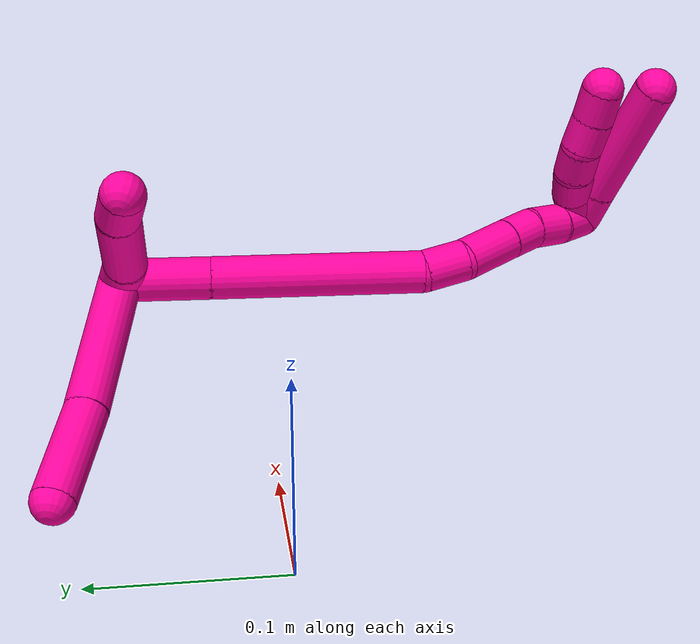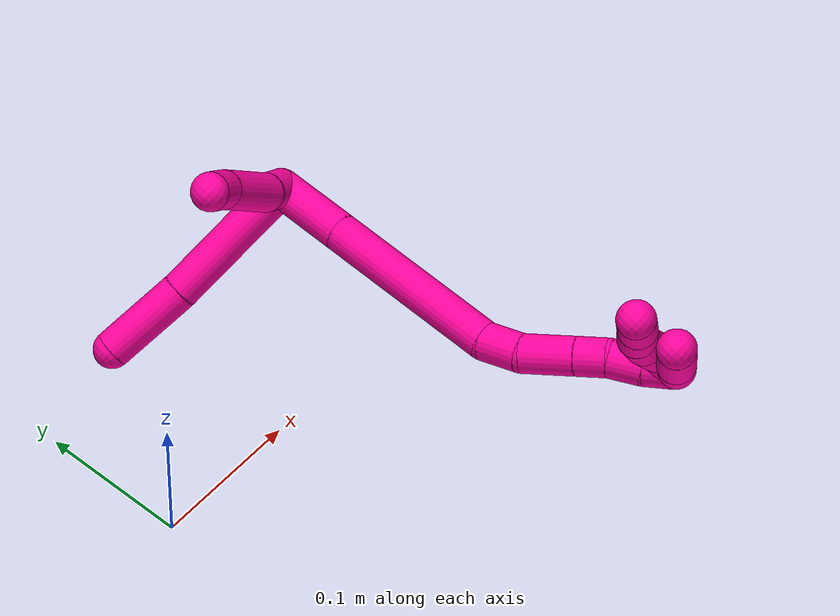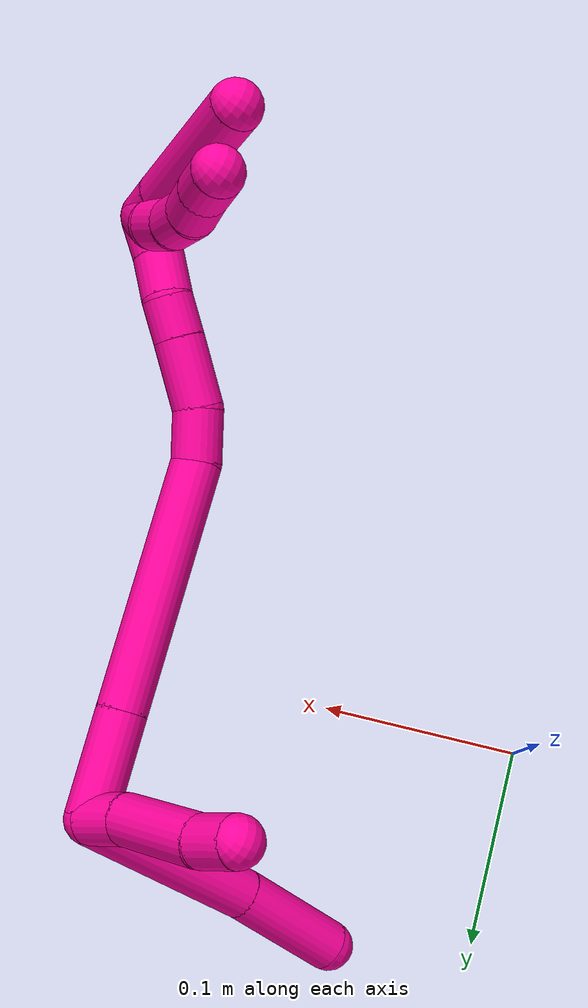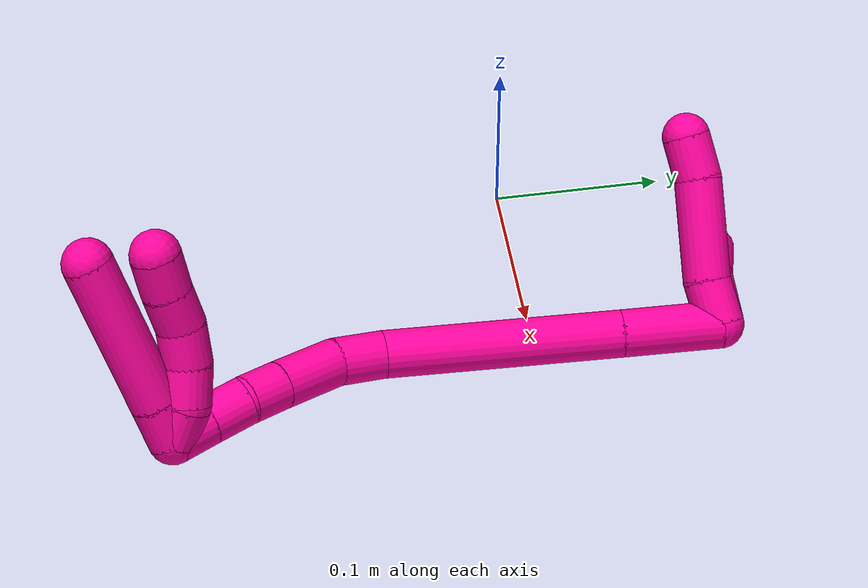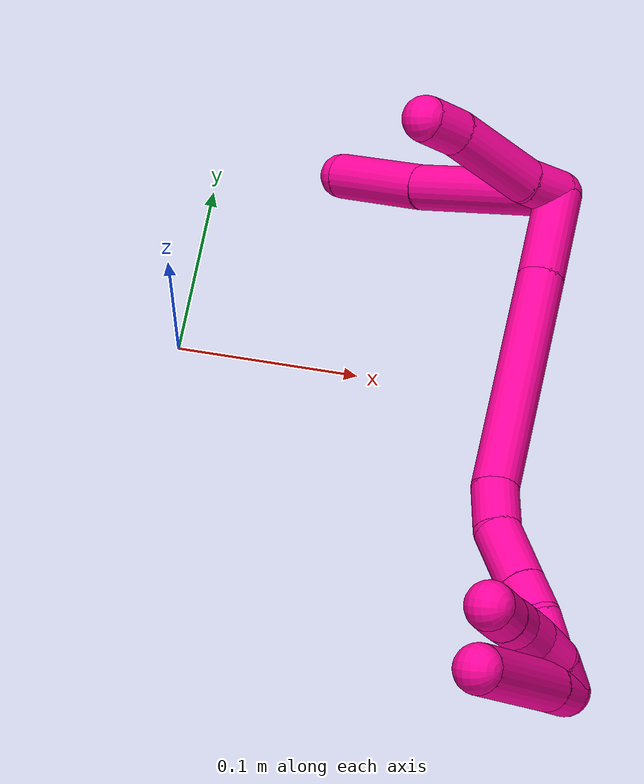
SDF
<sdf version="1.7">
 <world name="default">
  <model name="18">
   <static>0</static>
   <link name="18">
    <collision name="collision-cylinder-e_1_2_8">
     <pose>-0.000948 0.000489 -0.046113 -3.13099 -0.020552 2.18879</pose>
     <geometry><cylinder><radius>0.0125</radius><length>0.092251</length></cylinder></geometry>
     <surface>
      <friction><ode><mu>1.16</mu><mu2>1.16</mu2><slip1>0</slip1><slip2>0</slip2></ode></friction>
      <contact><ode><kp>1e+06</kp><kd>1</kd><max_vel>0</max_vel><min_depth>0.001</min_depth></ode></contact>
     </surface>
    </collision>
    <visual name="visual-cylinder-e_1_2_8">
     <pose>-0.000948 0.000489 -0.046113 -3.13099 -0.020552 2.18879</pose>
     <geometry><cylinder><radius>0.0125</radius><length>0.092251</length></cylinder></geometry>
     <material><ambient>1 0.007843 0.615686 1</ambient></material>
    </visual>
    <collision name="collision-cylinder-e_2_8_6">
     <pose>-0.00257 0.003519 -0.120981 -3.05345 -0.02335 0.51762</pose>
     <geometry><cylinder><radius>0.0125</radius><length>0.057749</length></cylinder></geometry>
     <surface>
      <friction><ode><mu>1.16</mu><mu2>1.16</mu2><slip1>0</slip1><slip2>0</slip2></ode></friction>
      <contact><ode><kp>1e+06</kp><kd>1</kd><max_vel>0</max_vel><min_depth>0.001</min_depth></ode></contact>
     </surface>
    </collision>
    <visual name="visual-cylinder-e_2_8_6">
     <pose>-0.00257 0.003519 -0.120981 -3.05345 -0.02335 0.51762</pose>
     <geometry><cylinder><radius>0.0125</radius><length>0.057749</length></cylinder></geometry>
     <material><ambient>1 0.007843 0.615686 1</ambient></material>
    </visual>
    <collision name="collision-cylinder-e_1_2_9">
     <pose>-0.011604 -0.001072 -0.002847 2.78165 -1.31439 -2.67848</pose>
     <geometry><cylinder><radius>0.0125</radius><length>0.023993</length></cylinder></geometry>
     <surface>
      <friction><ode><mu>1.16</mu><mu2>1.16</mu2><slip1>0</slip1><slip2>0</slip2></ode></friction>
      <contact><ode><kp>1e+06</kp><kd>1</kd><max_vel>0</max_vel><min_depth>0.001</min_depth></ode></contact>
     </surface>
    </collision>
    <visual name="visual-cylinder-e_1_2_9">
     <pose>-0.011604 -0.001072 -0.002847 2.78165 -1.31439 -2.67848</pose>
     <geometry><cylinder><radius>0.0125</radius><length>0.023993</length></cylinder></geometry>
     <material><ambient>1 0.007843 0.615686 1</ambient></material>
    </visual>
    <collision name="collision-cylinder-e_2_9_10">
     <pose>-0.049018 0.000912 -0.011091 -2.62645 -1.33499 2.49651</pose>
     <geometry><cylinder><radius>0.0125</radius><length>0.053087</length></cylinder></geometry>
     <surface>
      <friction><ode><mu>1.16</mu><mu2>1.16</mu2><slip1>0</slip1><slip2>0</slip2></ode></friction>
      <contact><ode><kp>1e+06</kp><kd>1</kd><max_vel>0</max_vel><min_depth>0.001</min_depth></ode></contact>
     </surface>
    </collision>
    <visual name="visual-cylinder-e_2_9_10">
     <pose>-0.049018 0.000912 -0.011091 -2.62645 -1.33499 2.49651</pose>
     <geometry><cylinder><radius>0.0125</radius><length>0.053087</length></cylinder></geometry>
     <material><ambient>1 0.007843 0.615686 1</ambient></material>
    </visual>
    <collision name="collision-cylinder-e_3_10_5">
     <pose>-0.086102 0.003178 -0.018376 2.7459 -1.39126 -2.67026</pose>
     <geometry><cylinder><radius>0.0125</radius><length>0.02292</length></cylinder></geometry>
     <surface>
      <friction><ode><mu>1.16</mu><mu2>1.16</mu2><slip1>0</slip1><slip2>0</slip2></ode></friction>
      <contact><ode><kp>1e+06</kp><kd>1</kd><max_vel>0</max_vel><min_depth>0.001</min_depth></ode></contact>
     </surface>
    </collision>
    <visual name="visual-cylinder-e_3_10_5">
     <pose>-0.086102 0.003178 -0.018376 2.7459 -1.39126 -2.67026</pose>
     <geometry><cylinder><radius>0.0125</radius><length>0.02292</length></cylinder></geometry>
     <material><ambient>1 0.007843 0.615686 1</ambient></material>
    </visual>
    <collision name="collision-cylinder-e_1_2_11">
     <pose>-0.004025 -0.025428 0.004235 1.40576 -0.154881 -0.131293</pose>
     <geometry><cylinder><radius>0.0125</radius><length>0.052182</length></cylinder></geometry>
     <surface>
      <friction><ode><mu>1.16</mu><mu2>1.16</mu2><slip1>0</slip1><slip2>0</slip2></ode></friction>
      <contact><ode><kp>1e+06</kp><kd>1</kd><max_vel>0</max_vel><min_depth>0.001</min_depth></ode></contact>
     </surface>
    </collision>
    <visual name="visual-cylinder-e_1_2_11">
     <pose>-0.004025 -0.025428 0.004235 1.40576 -0.154881 -0.131293</pose>
     <geometry><cylinder><radius>0.0125</radius><length>0.052182</length></cylinder></geometry>
     <material><ambient>1 0.007843 0.615686 1</ambient></material>
    </visual>
    <collision name="collision-cylinder-e_2_11_12">
     <pose>-0.01792 -0.111348 0.018486 1.40672 -0.159615 -0.135442</pose>
     <geometry><cylinder><radius>0.0125</radius><length>0.124209</length></cylinder></geometry>
     <surface>
      <friction><ode><mu>1.16</mu><mu2>1.16</mu2><slip1>0</slip1><slip2>0</slip2></ode></friction>
      <contact><ode><kp>1e+06</kp><kd>1</kd><max_vel>0</max_vel><min_depth>0.001</min_depth></ode></contact>
     </surface>
    </collision>
    <visual name="visual-cylinder-e_2_11_12">
     <pose>-0.01792 -0.111348 0.018486 1.40672 -0.159615 -0.135442</pose>
     <geometry><cylinder><radius>0.0125</radius><length>0.124209</length></cylinder></geometry>
     <material><ambient>1 0.007843 0.615686 1</ambient></material>
    </visual>
    <collision name="collision-cylinder-e_3_12_13">
     <pose>-0.029874 -0.183382 0.034242 1.10925 -0.160194 -0.099368</pose>
     <geometry><cylinder><radius>0.0125</radius><length>0.026117</length></cylinder></geometry>
     <surface>
      <friction><ode><mu>1.16</mu><mu2>1.16</mu2><slip1>0</slip1><slip2>0</slip2></ode></friction>
      <contact><ode><kp>1e+06</kp><kd>1</kd><max_vel>0</max_vel><min_depth>0.001</min_depth></ode></contact>
     </surface>
    </collision>
    <visual name="visual-cylinder-e_3_12_13">
     <pose>-0.029874 -0.183382 0.034242 1.10925 -0.160194 -0.099368</pose>
     <geometry><cylinder><radius>0.0125</radius><length>0.026117</length></cylinder></geometry>
     <material><ambient>1 0.007843 0.615686 1</ambient></material>
    </visual>
    <collision name="collision-cylinder-e_4_13_14">
     <pose>-0.032034 -0.207993 0.05151 0.848007 -0.004387 -0.00198</pose>
     <geometry><cylinder><radius>0.0125</radius><length>0.034853</length></cylinder></geometry>
     <surface>
      <friction><ode><mu>1.16</mu><mu2>1.16</mu2><slip1>0</slip1><slip2>0</slip2></ode></friction>
      <contact><ode><kp>1e+06</kp><kd>1</kd><max_vel>0</max_vel><min_depth>0.001</min_depth></ode></contact>
     </surface>
    </collision>
    <visual name="visual-cylinder-e_4_13_14">
     <pose>-0.032034 -0.207993 0.05151 0.848007 -0.004387 -0.00198</pose>
     <geometry><cylinder><radius>0.0125</radius><length>0.034853</length></cylinder></geometry>
     <material><ambient>1 0.007843 0.615686 1</ambient></material>
    </visual>
    <collision name="collision-cylinder-e_5_14_15">
     <pose>-0.031926 -0.228726 0.069809 0.847056 0.018021 0.008124</pose>
     <geometry><cylinder><radius>0.0125</radius><length>0.020459</length></cylinder></geometry>
     <surface>
      <friction><ode><mu>1.16</mu><mu2>1.16</mu2><slip1>0</slip1><slip2>0</slip2></ode></friction>
      <contact><ode><kp>1e+06</kp><kd>1</kd><max_vel>0</max_vel><min_depth>0.001</min_depth></ode></contact>
     </surface>
    </collision>
    <visual name="visual-cylinder-e_5_14_15">
     <pose>-0.031926 -0.228726 0.069809 0.847056 0.018021 0.008124</pose>
     <geometry><cylinder><radius>0.0125</radius><length>0.020459</length></cylinder></geometry>
     <material><ambient>1 0.007843 0.615686 1</ambient></material>
    </visual>
    <collision name="collision-cylinder-e_6_15_16">
     <pose>-0.030148 -0.24572 0.082212 1.02787 0.145152 0.082041</pose>
     <geometry><cylinder><radius>0.0125</radius><length>0.022026</length></cylinder></geometry>
     <surface>
      <friction><ode><mu>1.16</mu><mu2>1.16</mu2><slip1>0</slip1><slip2>0</slip2></ode></friction>
      <contact><ode><kp>1e+06</kp><kd>1</kd><max_vel>0</max_vel><min_depth>0.001</min_depth></ode></contact>
     </surface>
    </collision>
    <visual name="visual-cylinder-e_6_15_16">
     <pose>-0.030148 -0.24572 0.082212 1.02787 0.145152 0.082041</pose>
     <geometry><cylinder><radius>0.0125</radius><length>0.022026</length></cylinder></geometry>
     <material><ambient>1 0.007843 0.615686 1</ambient></material>
    </visual>
    <collision name="collision-cylinder-e_7_16_1">
     <pose>-0.02746 -0.262777 0.094218 0.88088 0.108942 0.051386</pose>
     <geometry><cylinder><radius>0.0125</radius><length>0.020156</length></cylinder></geometry>
     <surface>
      <friction><ode><mu>1.16</mu><mu2>1.16</mu2><slip1>0</slip1><slip2>0</slip2></ode></friction>
      <contact><ode><kp>1e+06</kp><kd>1</kd><max_vel>0</max_vel><min_depth>0.001</min_depth></ode></contact>
     </surface>
    </collision>
    <visual name="visual-cylinder-e_7_16_1">
     <pose>-0.02746 -0.262777 0.094218 0.88088 0.108942 0.051386</pose>
     <geometry><cylinder><radius>0.0125</radius><length>0.020156</length></cylinder></geometry>
     <material><ambient>1 0.007843 0.615686 1</ambient></material>
    </visual>
    <collision name="collision-cylinder-e_1_1_17">
     <pose>-0.03706 -0.271763 0.102825 0.513954 -1.33571 -0.40877</pose>
     <geometry><cylinder><radius>0.0125</radius><length>0.021996</length></cylinder></geometry>
     <surface>
      <friction><ode><mu>1.16</mu><mu2>1.16</mu2><slip1>0</slip1><slip2>0</slip2></ode></friction>
      <contact><ode><kp>1e+06</kp><kd>1</kd><max_vel>0</max_vel><min_depth>0.001</min_depth></ode></contact>
     </surface>
    </collision>
    <visual name="visual-cylinder-e_1_1_17">
     <pose>-0.03706 -0.271763 0.102825 0.513954 -1.33571 -0.40877</pose>
     <geometry><cylinder><radius>0.0125</radius><length>0.021996</length></cylinder></geometry>
     <material><ambient>1 0.007843 0.615686 1</ambient></material>
    </visual>
    <collision name="collision-cylinder-e_2_17_4">
     <pose>-0.085752 -0.277994 0.112312 0.600692 -1.34331 -0.482816</pose>
     <geometry><cylinder><radius>0.0125</radius><length>0.078004</length></cylinder></geometry>
     <surface>
      <friction><ode><mu>1.16</mu><mu2>1.16</mu2><slip1>0</slip1><slip2>0</slip2></ode></friction>
      <contact><ode><kp>1e+06</kp><kd>1</kd><max_vel>0</max_vel><min_depth>0.001</min_depth></ode></contact>
     </surface>
    </collision>
    <visual name="visual-cylinder-e_2_17_4">
     <pose>-0.085752 -0.277994 0.112312 0.600692 -1.34331 -0.482816</pose>
     <geometry><cylinder><radius>0.0125</radius><length>0.078004</length></cylinder></geometry>
     <material><ambient>1 0.007843 0.615686 1</ambient></material>
    </visual>
    <collision name="collision-cylinder-e_1_1_18">
     <pose>-0.034619 -0.264897 0.101243 -1.45556 -0.971011 0.878852</pose>
     <geometry><cylinder><radius>0.0125</radius><length>0.02</length></cylinder></geometry>
     <surface>
      <friction><ode><mu>1.16</mu><mu2>1.16</mu2><slip1>0</slip1><slip2>0</slip2></ode></friction>
      <contact><ode><kp>1e+06</kp><kd>1</kd><max_vel>0</max_vel><min_depth>0.001</min_depth></ode></contact>
     </surface>
    </collision>
    <visual name="visual-cylinder-e_1_1_18">
     <pose>-0.034619 -0.264897 0.101243 -1.45556 -0.971011 0.878852</pose>
     <geometry><cylinder><radius>0.0125</radius><length>0.02</length></cylinder></geometry>
     <material><ambient>1 0.007843 0.615686 1</ambient></material>
    </visual>
    <collision name="collision-cylinder-e_2_18_19">
     <pose>-0.05248 -0.256588 0.101256 -1.80218 -1.28958 1.5193</pose>
     <geometry><cylinder><radius>0.0125</radius><length>0.02</length></cylinder></geometry>
     <surface>
      <friction><ode><mu>1.16</mu><mu2>1.16</mu2><slip1>0</slip1><slip2>0</slip2></ode></friction>
      <contact><ode><kp>1e+06</kp><kd>1</kd><max_vel>0</max_vel><min_depth>0.001</min_depth></ode></contact>
     </surface>
    </collision>
    <visual name="visual-cylinder-e_2_18_19">
     <pose>-0.05248 -0.256588 0.101256 -1.80218 -1.28958 1.5193</pose>
     <geometry><cylinder><radius>0.0125</radius><length>0.02</length></cylinder></geometry>
     <material><ambient>1 0.007843 0.615686 1</ambient></material>
    </visual>
    <collision name="collision-cylinder-e_3_19_20">
     <pose>-0.071983 -0.252834 0.101608 -0.817298 -1.4259 0.716531</pose>
     <geometry><cylinder><radius>0.0125</radius><length>0.02</length></cylinder></geometry>
     <surface>
      <friction><ode><mu>1.16</mu><mu2>1.16</mu2><slip1>0</slip1><slip2>0</slip2></ode></friction>
      <contact><ode><kp>1e+06</kp><kd>1</kd><max_vel>0</max_vel><min_depth>0.001</min_depth></ode></contact>
     </surface>
    </collision>
    <visual name="visual-cylinder-e_3_19_20">
     <pose>-0.071983 -0.252834 0.101608 -0.817298 -1.4259 0.716531</pose>
     <geometry><cylinder><radius>0.0125</radius><length>0.02</length></cylinder></geometry>
     <material><ambient>1 0.007843 0.615686 1</ambient></material>
    </visual>
    <collision name="collision-cylinder-e_4_20_21">
     <pose>-0.091383 -0.252168 0.105678 0.124865 -1.25495 -0.090615</pose>
     <geometry><cylinder><radius>0.0125</radius><length>0.02</length></cylinder></geometry>
     <surface>
      <friction><ode><mu>1.16</mu><mu2>1.16</mu2><slip1>0</slip1><slip2>0</slip2></ode></friction>
      <contact><ode><kp>1e+06</kp><kd>1</kd><max_vel>0</max_vel><min_depth>0.001</min_depth></ode></contact>
     </surface>
    </collision>
    <visual name="visual-cylinder-e_4_20_21">
     <pose>-0.091383 -0.252168 0.105678 0.124865 -1.25495 -0.090615</pose>
     <geometry><cylinder><radius>0.0125</radius><length>0.02</length></cylinder></geometry>
     <material><ambient>1 0.007843 0.615686 1</ambient></material>
    </visual>
    <collision name="collision-cylinder-e_5_21_3">
     <pose>-0.110506 -0.252271 0.111486 -0.103472 -1.29315 0.078133</pose>
     <geometry><cylinder><radius>0.0125</radius><length>0.02</length></cylinder></geometry>
     <surface>
      <friction><ode><mu>1.16</mu><mu2>1.16</mu2><slip1>0</slip1><slip2>0</slip2></ode></friction>
      <contact><ode><kp>1e+06</kp><kd>1</kd><max_vel>0</max_vel><min_depth>0.001</min_depth></ode></contact>
     </surface>
    </collision>
    <visual name="visual-cylinder-e_5_21_3">
     <pose>-0.110506 -0.252271 0.111486 -0.103472 -1.29315 0.078133</pose>
     <geometry><cylinder><radius>0.0125</radius><length>0.02</length></cylinder></geometry>
     <material><ambient>1 0.007843 0.615686 1</ambient></material>
    </visual>
    <collision name="collision-sphere-3">
     <pose>-0.120123 -0.251988 0.114212 0 -0 0</pose>
     <geometry><sphere><radius>0.0125</radius></sphere></geometry>
     <surface>
      <friction><ode><mu>1.16</mu><mu2>1.16</mu2><slip1>0</slip1><slip2>0</slip2></ode></friction>
      <contact><ode><kp>1e+06</kp><kd>1</kd><max_vel>0</max_vel><min_depth>0.001</min_depth></ode></contact>
     </surface>
    </collision>
    <visual name="visual-sphere-3">
     <pose>-0.120123 -0.251988 0.114212 0 -0 0</pose>
     <geometry><sphere><radius>0.0125</radius></sphere></geometry>
     <material><ambient>1 0.007843 0.615686 1</ambient></material>
    </visual>
    <collision name="collision-sphere-21">
     <pose>-0.100889 -0.252554 0.10876 0 -0 0</pose>
     <geometry><sphere><radius>0.0125</radius></sphere></geometry>
     <surface>
      <friction><ode><mu>1.16</mu><mu2>1.16</mu2><slip1>0</slip1><slip2>0</slip2></ode></friction>
      <contact><ode><kp>1e+06</kp><kd>1</kd><max_vel>0</max_vel><min_depth>0.001</min_depth></ode></contact>
     </surface>
    </collision>
    <visual name="visual-sphere-21">
     <pose>-0.100889 -0.252554 0.10876 0 -0 0</pose>
     <geometry><sphere><radius>0.0125</radius></sphere></geometry>
     <material><ambient>1 0.007843 0.615686 1</ambient></material>
    </visual>
    <collision name="collision-sphere-20">
     <pose>-0.081878 -0.251781 0.102596 0 -0 0</pose>
     <geometry><sphere><radius>0.0125</radius></sphere></geometry>
     <surface>
      <friction><ode><mu>1.16</mu><mu2>1.16</mu2><slip1>0</slip1><slip2>0</slip2></ode></friction>
      <contact><ode><kp>1e+06</kp><kd>1</kd><max_vel>0</max_vel><min_depth>0.001</min_depth></ode></contact>
     </surface>
    </collision>
    <visual name="visual-sphere-20">
     <pose>-0.081878 -0.251781 0.102596 0 -0 0</pose>
     <geometry><sphere><radius>0.0125</radius></sphere></geometry>
     <material><ambient>1 0.007843 0.615686 1</ambient></material>
    </visual>
    <collision name="collision-sphere-19">
     <pose>-0.062087 -0.253887 0.10062 0 -0 0</pose>
     <geometry><sphere><radius>0.0125</radius></sphere></geometry>
     <surface>
      <friction><ode><mu>1.16</mu><mu2>1.16</mu2><slip1>0</slip1><slip2>0</slip2></ode></friction>
      <contact><ode><kp>1e+06</kp><kd>1</kd><max_vel>0</max_vel><min_depth>0.001</min_depth></ode></contact>
     </surface>
    </collision>
    <visual name="visual-sphere-19">
     <pose>-0.062087 -0.253887 0.10062 0 -0 0</pose>
     <geometry><sphere><radius>0.0125</radius></sphere></geometry>
     <material><ambient>1 0.007843 0.615686 1</ambient></material>
    </visual>
    <collision name="collision-sphere-5">
     <pose>-0.097378 0.00239 -0.020265 0 -0 0</pose>
     <geometry><sphere><radius>0.0125</radius></sphere></geometry>
     <surface>
      <friction><ode><mu>1.16</mu><mu2>1.16</mu2><slip1>0</slip1><slip2>0</slip2></ode></friction>
      <contact><ode><kp>1e+06</kp><kd>1</kd><max_vel>0</max_vel><min_depth>0.001</min_depth></ode></contact>
     </surface>
    </collision>
    <visual name="visual-sphere-5">
     <pose>-0.097378 0.00239 -0.020265 0 -0 0</pose>
     <geometry><sphere><radius>0.0125</radius></sphere></geometry>
     <material><ambient>1 0.007843 0.615686 1</ambient></material>
    </visual>
    <collision name="collision-sphere-10">
     <pose>-0.074826 0.003967 -0.016488 0 -0 0</pose>
     <geometry><sphere><radius>0.0125</radius></sphere></geometry>
     <surface>
      <friction><ode><mu>1.16</mu><mu2>1.16</mu2><slip1>0</slip1><slip2>0</slip2></ode></friction>
      <contact><ode><kp>1e+06</kp><kd>1</kd><max_vel>0</max_vel><min_depth>0.001</min_depth></ode></contact>
     </surface>
    </collision>
    <visual name="visual-sphere-10">
     <pose>-0.074826 0.003967 -0.016488 0 -0 0</pose>
     <geometry><sphere><radius>0.0125</radius></sphere></geometry>
     <material><ambient>1 0.007843 0.615686 1</ambient></material>
    </visual>
    <collision name="collision-sphere-6">
     <pose>-0.003244 0.00606 -0.149735 0 -0 0</pose>
     <geometry><sphere><radius>0.0125</radius></sphere></geometry>
     <surface>
      <friction><ode><mu>1.16</mu><mu2>1.16</mu2><slip1>0</slip1><slip2>0</slip2></ode></friction>
      <contact><ode><kp>1e+06</kp><kd>1</kd><max_vel>0</max_vel><min_depth>0.001</min_depth></ode></contact>
     </surface>
    </collision>
    <visual name="visual-sphere-6">
     <pose>-0.003244 0.00606 -0.149735 0 -0 0</pose>
     <geometry><sphere><radius>0.0125</radius></sphere></geometry>
     <material><ambient>1 0.007843 0.615686 1</ambient></material>
    </visual>
    <collision name="collision-sphere-9">
     <pose>-0.023209 -0.002143 -0.005695 0 -0 0</pose>
     <geometry><sphere><radius>0.0125</radius></sphere></geometry>
     <surface>
      <friction><ode><mu>1.16</mu><mu2>1.16</mu2><slip1>0</slip1><slip2>0</slip2></ode></friction>
      <contact><ode><kp>1e+06</kp><kd>1</kd><max_vel>0</max_vel><min_depth>0.001</min_depth></ode></contact>
     </surface>
    </collision>
    <visual name="visual-sphere-9">
     <pose>-0.023209 -0.002143 -0.005695 0 -0 0</pose>
     <geometry><sphere><radius>0.0125</radius></sphere></geometry>
     <material><ambient>1 0.007843 0.615686 1</ambient></material>
    </visual>
    <collision name="collision-sphere-2">
     <geometry><sphere><radius>0.0125</radius></sphere></geometry>
     <surface>
      <friction><ode><mu>1.16</mu><mu2>1.16</mu2><slip1>0</slip1><slip2>0</slip2></ode></friction>
      <contact><ode><kp>1e+06</kp><kd>1</kd><max_vel>0</max_vel><min_depth>0.001</min_depth></ode></contact>
     </surface>
    </collision>
    <visual name="visual-sphere-2">
     <geometry><sphere><radius>0.0125</radius></sphere></geometry>
     <material><ambient>1 0.007843 0.615686 1</ambient></material>
    </visual>
    <collision name="collision-sphere-8">
     <pose>-0.001896 0.000978 -0.092227 0 -0 0</pose>
     <geometry><sphere><radius>0.0125</radius></sphere></geometry>
     <surface>
      <friction><ode><mu>1.16</mu><mu2>1.16</mu2><slip1>0</slip1><slip2>0</slip2></ode></friction>
      <contact><ode><kp>1e+06</kp><kd>1</kd><max_vel>0</max_vel><min_depth>0.001</min_depth></ode></contact>
     </surface>
    </collision>
    <visual name="visual-sphere-8">
     <pose>-0.001896 0.000978 -0.092227 0 -0 0</pose>
     <geometry><sphere><radius>0.0125</radius></sphere></geometry>
     <material><ambient>1 0.007843 0.615686 1</ambient></material>
    </visual>
    <collision name="collision-sphere-11">
     <pose>-0.00805 -0.050856 0.00847 0 -0 0</pose>
     <geometry><sphere><radius>0.0125</radius></sphere></geometry>
     <surface>
      <friction><ode><mu>1.16</mu><mu2>1.16</mu2><slip1>0</slip1><slip2>0</slip2></ode></friction>
      <contact><ode><kp>1e+06</kp><kd>1</kd><max_vel>0</max_vel><min_depth>0.001</min_depth></ode></contact>
     </surface>
    </collision>
    <visual name="visual-sphere-11">
     <pose>-0.00805 -0.050856 0.00847 0 -0 0</pose>
     <geometry><sphere><radius>0.0125</radius></sphere></geometry>
     <material><ambient>1 0.007843 0.615686 1</ambient></material>
    </visual>
    <collision name="collision-sphere-12">
     <pose>-0.027791 -0.171839 0.028501 0 -0 0</pose>
     <geometry><sphere><radius>0.0125</radius></sphere></geometry>
     <surface>
      <friction><ode><mu>1.16</mu><mu2>1.16</mu2><slip1>0</slip1><slip2>0</slip2></ode></friction>
      <contact><ode><kp>1e+06</kp><kd>1</kd><max_vel>0</max_vel><min_depth>0.001</min_depth></ode></contact>
     </surface>
    </collision>
    <visual name="visual-sphere-12">
     <pose>-0.027791 -0.171839 0.028501 0 -0 0</pose>
     <geometry><sphere><radius>0.0125</radius></sphere></geometry>
     <material><ambient>1 0.007843 0.615686 1</ambient></material>
    </visual>
    <collision name="collision-sphere-13">
     <pose>-0.031957 -0.194924 0.039983 0 -0 0</pose>
     <geometry><sphere><radius>0.0125</radius></sphere></geometry>
     <surface>
      <friction><ode><mu>1.16</mu><mu2>1.16</mu2><slip1>0</slip1><slip2>0</slip2></ode></friction>
      <contact><ode><kp>1e+06</kp><kd>1</kd><max_vel>0</max_vel><min_depth>0.001</min_depth></ode></contact>
     </surface>
    </collision>
    <visual name="visual-sphere-13">
     <pose>-0.031957 -0.194924 0.039983 0 -0 0</pose>
     <geometry><sphere><radius>0.0125</radius></sphere></geometry>
     <material><ambient>1 0.007843 0.615686 1</ambient></material>
    </visual>
    <collision name="collision-sphere-14">
     <pose>-0.03211 -0.221062 0.063037 0 -0 0</pose>
     <geometry><sphere><radius>0.0125</radius></sphere></geometry>
     <surface>
      <friction><ode><mu>1.16</mu><mu2>1.16</mu2><slip1>0</slip1><slip2>0</slip2></ode></friction>
      <contact><ode><kp>1e+06</kp><kd>1</kd><max_vel>0</max_vel><min_depth>0.001</min_depth></ode></contact>
     </surface>
    </collision>
    <visual name="visual-sphere-14">
     <pose>-0.03211 -0.221062 0.063037 0 -0 0</pose>
     <geometry><sphere><radius>0.0125</radius></sphere></geometry>
     <material><ambient>1 0.007843 0.615686 1</ambient></material>
    </visual>
    <collision name="collision-sphere-15">
     <pose>-0.031741 -0.23639 0.076582 0 -0 0</pose>
     <geometry><sphere><radius>0.0125</radius></sphere></geometry>
     <surface>
      <friction><ode><mu>1.16</mu><mu2>1.16</mu2><slip1>0</slip1><slip2>0</slip2></ode></friction>
      <contact><ode><kp>1e+06</kp><kd>1</kd><max_vel>0</max_vel><min_depth>0.001</min_depth></ode></contact>
     </surface>
    </collision>
    <visual name="visual-sphere-15">
     <pose>-0.031741 -0.23639 0.076582 0 -0 0</pose>
     <geometry><sphere><radius>0.0125</radius></sphere></geometry>
     <material><ambient>1 0.007843 0.615686 1</ambient></material>
    </visual>
    <collision name="collision-sphere-16">
     <pose>-0.028555 -0.25505 0.087842 0 -0 0</pose>
     <geometry><sphere><radius>0.0125</radius></sphere></geometry>
     <surface>
      <friction><ode><mu>1.16</mu><mu2>1.16</mu2><slip1>0</slip1><slip2>0</slip2></ode></friction>
      <contact><ode><kp>1e+06</kp><kd>1</kd><max_vel>0</max_vel><min_depth>0.001</min_depth></ode></contact>
     </surface>
    </collision>
    <visual name="visual-sphere-16">
     <pose>-0.028555 -0.25505 0.087842 0 -0 0</pose>
     <geometry><sphere><radius>0.0125</radius></sphere></geometry>
     <material><ambient>1 0.007843 0.615686 1</ambient></material>
    </visual>
    <collision name="collision-sphere-1">
     <pose>-0.026364 -0.270504 0.100594 0 -0 0</pose>
     <geometry><sphere><radius>0.0125</radius></sphere></geometry>
     <surface>
      <friction><ode><mu>1.16</mu><mu2>1.16</mu2><slip1>0</slip1><slip2>0</slip2></ode></friction>
      <contact><ode><kp>1e+06</kp><kd>1</kd><max_vel>0</max_vel><min_depth>0.001</min_depth></ode></contact>
     </surface>
    </collision>
    <visual name="visual-sphere-1">
     <pose>-0.026364 -0.270504 0.100594 0 -0 0</pose>
     <geometry><sphere><radius>0.0125</radius></sphere></geometry>
     <material><ambient>1 0.007843 0.615686 1</ambient></material>
    </visual>
    <collision name="collision-sphere-18">
     <pose>-0.042873 -0.259289 0.101893 0 -0 0</pose>
     <geometry><sphere><radius>0.0125</radius></sphere></geometry>
     <surface>
      <friction><ode><mu>1.16</mu><mu2>1.16</mu2><slip1>0</slip1><slip2>0</slip2></ode></friction>
      <contact><ode><kp>1e+06</kp><kd>1</kd><max_vel>0</max_vel><min_depth>0.001</min_depth></ode></contact>
     </surface>
    </collision>
    <visual name="visual-sphere-18">
     <pose>-0.042873 -0.259289 0.101893 0 -0 0</pose>
     <geometry><sphere><radius>0.0125</radius></sphere></geometry>
     <material><ambient>1 0.007843 0.615686 1</ambient></material>
    </visual>
    <collision name="collision-sphere-17">
     <pose>-0.047755 -0.273023 0.105056 0 -0 0</pose>
     <geometry><sphere><radius>0.0125</radius></sphere></geometry>
     <surface>
      <friction><ode><mu>1.16</mu><mu2>1.16</mu2><slip1>0</slip1><slip2>0</slip2></ode></friction>
      <contact><ode><kp>1e+06</kp><kd>1</kd><max_vel>0</max_vel><min_depth>0.001</min_depth></ode></contact>
     </surface>
    </collision>
    <visual name="visual-sphere-17">
     <pose>-0.047755 -0.273023 0.105056 0 -0 0</pose>
     <geometry><sphere><radius>0.0125</radius></sphere></geometry>
     <material><ambient>1 0.007843 0.615686 1</ambient></material>
    </visual>
    <collision name="collision-sphere-4">
     <pose>-0.123749 -0.282966 0.119568 0 -0 0</pose>
     <geometry><sphere><radius>0.0125</radius></sphere></geometry>
     <surface>
      <friction><ode><mu>1.16</mu><mu2>1.16</mu2><slip1>0</slip1><slip2>0</slip2></ode></friction>
      <contact><ode><kp>1e+06</kp><kd>1</kd><max_vel>0</max_vel><min_depth>0.001</min_depth></ode></contact>
     </surface>
    </collision>
    <visual name="visual-sphere-4">
     <pose>-0.123749 -0.282966 0.119568 0 -0 0</pose>
     <geometry><sphere><radius>0.0125</radius></sphere></geometry>
     <material><ambient>1 0.007843 0.615686 1</ambient></material>
    </visual>
    <inertial>
     <pose>-0.034689 -0.127303 0.025965 0 -0 0</pose>
     <mass>0.75</mass>
     <inertia>
      <ixx>0.000184</ixx>
      <ixy>0</ixy>
      <ixz>0</ixz>
      <iyy>0.000152</iyy>
      <iyz>0</iyz>
      <izz>0.000279</izz>
     </inertia>
    </inertial>
   </link>
   <pose>0.195191 0.082375 0.08835 0.390127 0.9474 0.236018</pose>
  </model>
 </world>
</sdf>
